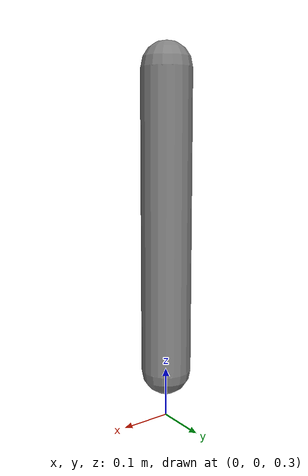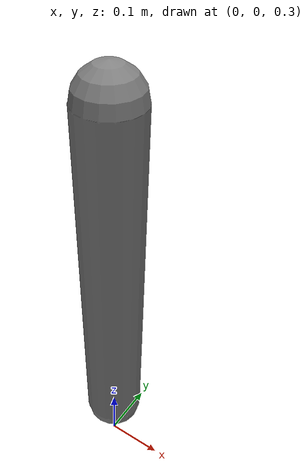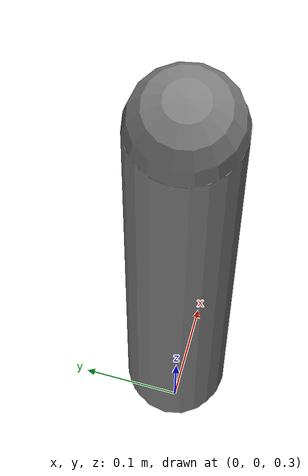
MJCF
<mujoco model="unstable_controller_fixed">
  <option timestep="0.002"/>
  <worldbody>
    <body name="arm" pos="0 0 0.5">
      <joint name="j1" type="hinge" axis="0 1 0" damping="1.0"/>
      <geom name="g" type="capsule" size="0.05 0.3" mass="5.0" pos="0 0 0.2"/>
    </body>
  </worldbody>
  <actuator>
    <position name="servo" joint="j1" kp="50" ctrlrange="-3 3"/>
  </actuator>
</mujoco>
